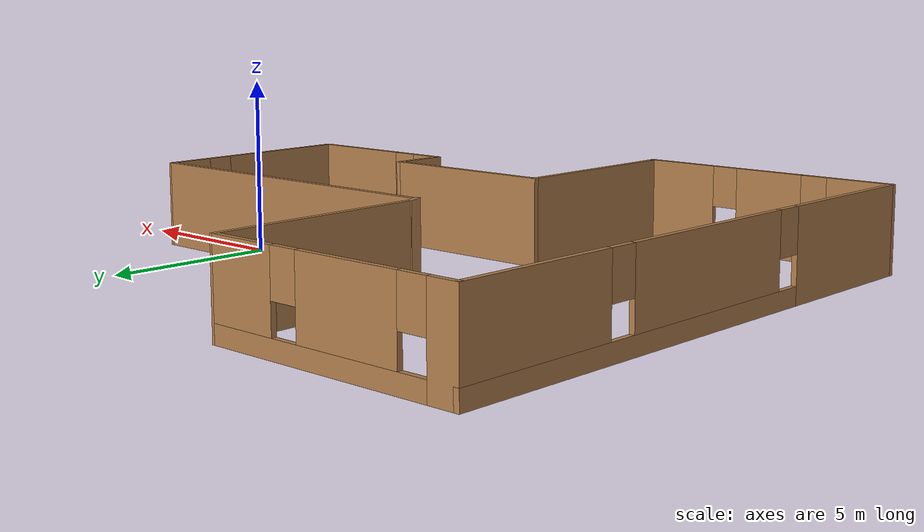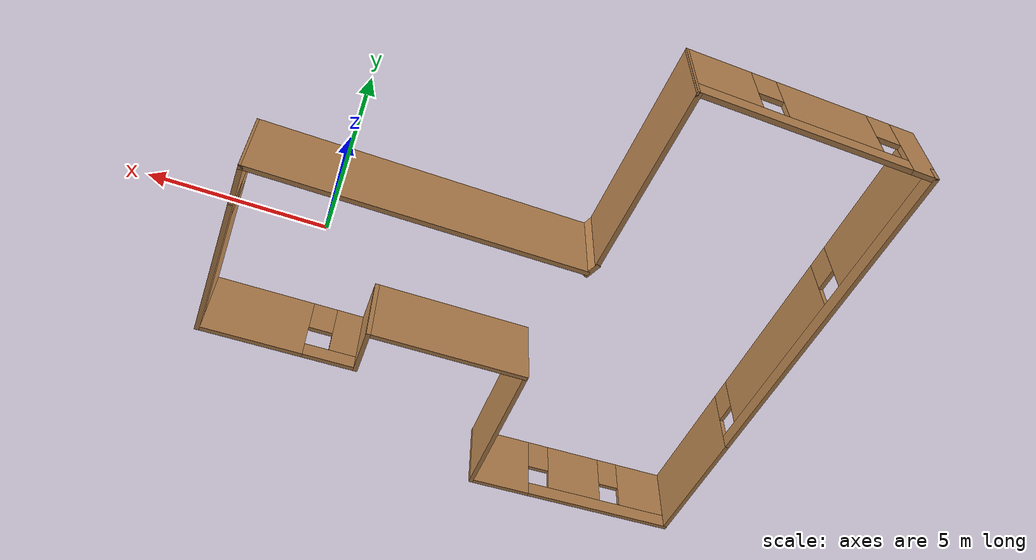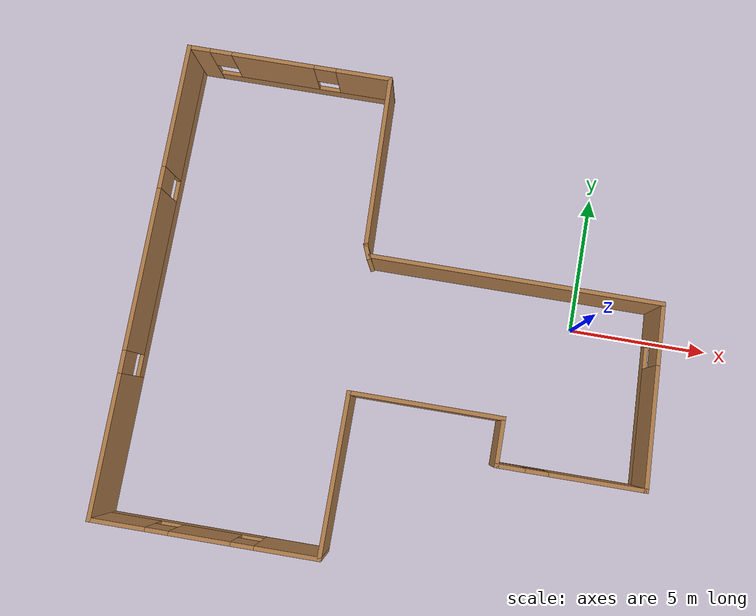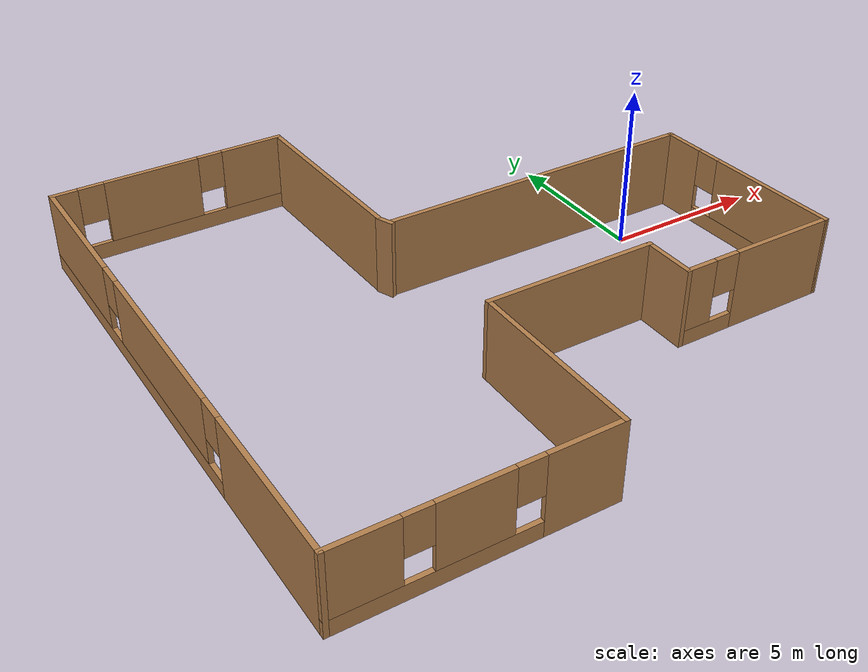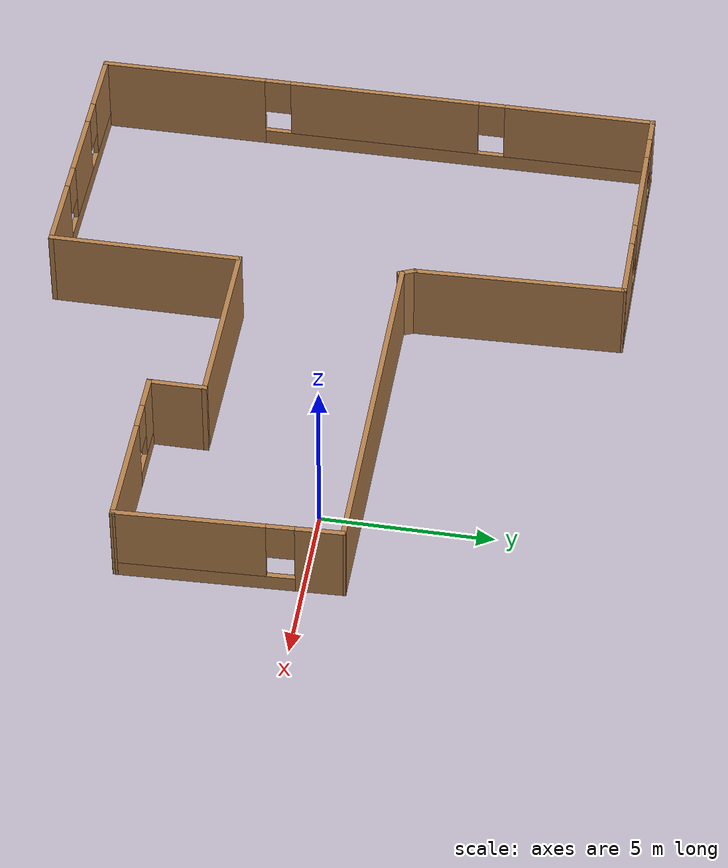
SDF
<?xml version='1.0'?>
<sdf version='1.6'>
  <model name='project2_building'>
    <pose frame=''>-6.21934 -0.832787 0 0 -0 0</pose>
    <link name='Wall_1'>
      <collision name='Wall_1_Collision'>
        <geometry>
          <box>
            <size>10.5 0.15 2.5</size>
          </box>
        </geometry>
        <pose frame=''>0 0 1.25 0 -0 0</pose>
      </collision>
      <visual name='Wall_1_Visual'>
        <pose frame=''>0 0 1.25 0 -0 0</pose>
        <geometry>
          <box>
            <size>10.5 0.15 2.5</size>
          </box>
        </geometry>
        <material>
          <script>
            <uri>file://media/materials/scripts/gazebo.material</uri>
            <name>Gazebo/Wood</name>
          </script>
          <ambient>1 1 1 1</ambient>
        </material>
        <meta>
          <layer>0</layer>
        </meta>
      </visual>
      <pose frame=''>3.72356 1.96596 0 0 -0 0</pose>
    </link>
    <link name='Wall_10'>
      <collision name='Wall_10_Collision'>
        <geometry>
          <box>
            <size>6.21461 0.15 2.5</size>
          </box>
        </geometry>
        <pose frame=''>0 0 1.25 0 -0 0</pose>
      </collision>
      <visual name='Wall_10_Visual'>
        <pose frame=''>0 0 1.25 0 -0 0</pose>
        <geometry>
          <box>
            <size>6.21461 0.15 2.5</size>
          </box>
        </geometry>
        <material>
          <script>
            <uri>file://media/materials/scripts/gazebo.material</uri>
            <name>Gazebo/Wood</name>
          </script>
          <ambient>1 1 1 1</ambient>
        </material>
        <meta>
          <layer>0</layer>
        </meta>
      </visual>
      <pose frame=''>-1.70914 5.39297 0 0 0 -1.54035</pose>
    </link>
    <link name='Wall_11'>
      <collision name='Wall_11_Collision'>
        <geometry>
          <box>
            <size>0.579263 0.15 2.5</size>
          </box>
        </geometry>
        <pose frame=''>0 0 1.25 0 -0 0</pose>
      </collision>
      <visual name='Wall_11_Visual'>
        <pose frame=''>0 0 1.25 0 -0 0</pose>
        <geometry>
          <box>
            <size>0.579263 0.15 2.5</size>
          </box>
        </geometry>
        <material>
          <script>
            <uri>file://media/materials/scripts/gazebo.material</uri>
            <name>Gazebo/Wood</name>
          </script>
          <ambient>1 1 1 1</ambient>
        </material>
        <meta>
          <layer>0</layer>
        </meta>
      </visual>
      <pose frame=''>-1.53415 2.10249 0 0 0 -1.17521</pose>
    </link>
    <link name='Wall_2'>
      <pose frame=''>9.02356 -1.23008 0 0 0 -1.53171</pose>
      <visual name='Wall_2_Visual_0'>
        <pose frame=''>-2.56284 0 1.25 0 -0 0</pose>
        <geometry>
          <box>
            <size>1.42129 0.15 2.5</size>
          </box>
        </geometry>
        <material>
          <script>
            <uri>file://media/materials/scripts/gazebo.material</uri>
            <name>Gazebo/Wood</name>
          </script>
          <ambient>1 1 1 1</ambient>
        </material>
        <meta>
          <layer>0</layer>
        </meta>
      </visual>
      <collision name='Wall_2_Collision_0'>
        <geometry>
          <box>
            <size>1.42129 0.15 2.5</size>
          </box>
        </geometry>
        <pose frame=''>-2.56284 0 1.25 0 -0 0</pose>
      </collision>
      <visual name='Wall_2_Visual_1'>
        <pose frame=''>0.710646 0 0.25 0 -0 0</pose>
        <geometry>
          <box>
            <size>5.12568 0.15 0.5</size>
          </box>
        </geometry>
        <material>
          <script>
            <uri>file://media/materials/scripts/gazebo.material</uri>
            <name>Gazebo/Wood</name>
          </script>
          <ambient>1 1 1 1</ambient>
        </material>
        <meta>
          <layer>0</layer>
        </meta>
      </visual>
      <collision name='Wall_2_Collision_1'>
        <geometry>
          <box>
            <size>5.12568 0.15 0.5</size>
          </box>
        </geometry>
        <pose frame=''>0.710646 0 0.25 0 -0 0</pose>
      </collision>
      <visual name='Wall_2_Visual_2'>
        <pose frame=''>1.11065 0 1.5 0 -0 0</pose>
        <geometry>
          <box>
            <size>4.32568 0.15 2</size>
          </box>
        </geometry>
        <material>
          <script>
            <uri>file://media/materials/scripts/gazebo.material</uri>
            <name>Gazebo/Wood</name>
          </script>
          <ambient>1 1 1 1</ambient>
        </material>
        <meta>
          <layer>0</layer>
        </meta>
      </visual>
      <collision name='Wall_2_Collision_2'>
        <geometry>
          <box>
            <size>4.32568 0.15 2</size>
          </box>
        </geometry>
        <pose frame=''>1.11065 0 1.5 0 -0 0</pose>
      </collision>
      <visual name='Wall_2_Visual_3'>
        <pose frame=''>-1.45219 0 1.9 0 -0 0</pose>
        <geometry>
          <box>
            <size>0.8 0.15 1.2</size>
          </box>
        </geometry>
        <material>
          <script>
            <uri>file://media/materials/scripts/gazebo.material</uri>
            <name>Gazebo/Wood</name>
          </script>
          <ambient>1 1 1 1</ambient>
        </material>
        <meta>
          <layer>0</layer>
        </meta>
      </visual>
      <collision name='Wall_2_Collision_3'>
        <geometry>
          <box>
            <size>0.8 0.15 1.2</size>
          </box>
        </geometry>
        <pose frame=''>-1.45219 0 1.9 0 -0 0</pose>
      </collision>
    </link>
    <link name='Wall_3'>
      <pose frame=''>6.59856 -4.42612 0 0 -0 3.14159</pose>
      <visual name='Wall_3_Visual_0'>
        <pose frame=''>-0.924717 0 1.25 0 -0 0</pose>
        <geometry>
          <box>
            <size>3.40057 0.15 2.5</size>
          </box>
        </geometry>
        <material>
          <script>
            <uri>file://media/materials/scripts/gazebo.material</uri>
            <name>Gazebo/Wood</name>
          </script>
          <ambient>1 1 1 1</ambient>
        </material>
        <meta>
          <layer>0</layer>
        </meta>
      </visual>
      <collision name='Wall_3_Collision_0'>
        <geometry>
          <box>
            <size>3.40057 0.15 2.5</size>
          </box>
        </geometry>
        <pose frame=''>-0.924717 0 1.25 0 -0 0</pose>
      </collision>
      <visual name='Wall_3_Visual_1'>
        <pose frame=''>1.70028 0 0.25 0 -0 0</pose>
        <geometry>
          <box>
            <size>1.84943 0.15 0.5</size>
          </box>
        </geometry>
        <material>
          <script>
            <uri>file://media/materials/scripts/gazebo.material</uri>
            <name>Gazebo/Wood</name>
          </script>
          <ambient>1 1 1 1</ambient>
        </material>
        <meta>
          <layer>0</layer>
        </meta>
      </visual>
      <collision name='Wall_3_Collision_1'>
        <geometry>
          <box>
            <size>1.84943 0.15 0.5</size>
          </box>
        </geometry>
        <pose frame=''>1.70028 0 0.25 0 -0 0</pose>
      </collision>
      <visual name='Wall_3_Visual_2'>
        <pose frame=''>2.10028 0 1.5 0 -0 0</pose>
        <geometry>
          <box>
            <size>1.04943 0.15 2</size>
          </box>
        </geometry>
        <material>
          <script>
            <uri>file://media/materials/scripts/gazebo.material</uri>
            <name>Gazebo/Wood</name>
          </script>
          <ambient>1 1 1 1</ambient>
        </material>
        <meta>
          <layer>0</layer>
        </meta>
      </visual>
      <collision name='Wall_3_Collision_2'>
        <geometry>
          <box>
            <size>1.04943 0.15 2</size>
          </box>
        </geometry>
        <pose frame=''>2.10028 0 1.5 0 -0 0</pose>
      </collision>
      <visual name='Wall_3_Visual_3'>
        <pose frame=''>1.17557 0 1.9 0 -0 0</pose>
        <geometry>
          <box>
            <size>0.8 0.15 1.2</size>
          </box>
        </geometry>
        <material>
          <script>
            <uri>file://media/materials/scripts/gazebo.material</uri>
            <name>Gazebo/Wood</name>
          </script>
          <ambient>1 1 1 1</ambient>
        </material>
        <meta>
          <layer>0</layer>
        </meta>
      </visual>
      <collision name='Wall_3_Collision_3'>
        <geometry>
          <box>
            <size>0.8 0.15 1.2</size>
          </box>
        </geometry>
        <pose frame=''>1.17557 0 1.9 0 -0 0</pose>
      </collision>
    </link>
    <link name='Wall_4'>
      <collision name='Wall_4_Collision'>
        <geometry>
          <box>
            <size>1.75 0.15 2.5</size>
          </box>
        </geometry>
        <pose frame=''>0 0 1.25 0 -0 0</pose>
      </collision>
      <visual name='Wall_4_Visual'>
        <pose frame=''>0 0 1.25 0 -0 0</pose>
        <geometry>
          <box>
            <size>1.75 0.15 2.5</size>
          </box>
        </geometry>
        <material>
          <script>
            <uri>file://media/materials/scripts/gazebo.material</uri>
            <name>Gazebo/Wood</name>
          </script>
          <ambient>1 1 1 1</ambient>
        </material>
        <meta>
          <layer>0</layer>
        </meta>
      </visual>
      <pose frame=''>4.04856 -3.62612 0 0 -0 1.5708</pose>
    </link>
    <link name='Wall_5'>
      <collision name='Wall_5_Collision'>
        <geometry>
          <box>
            <size>5.5 0.15 2.5</size>
          </box>
        </geometry>
        <pose frame=''>0 0 1.25 0 -0 0</pose>
      </collision>
      <visual name='Wall_5_Visual'>
        <pose frame=''>0 0 1.25 0 -0 0</pose>
        <geometry>
          <box>
            <size>5.5 0.15 2.5</size>
          </box>
        </geometry>
        <material>
          <script>
            <uri>file://media/materials/scripts/gazebo.material</uri>
            <name>Gazebo/Wood</name>
          </script>
          <ambient>1 1 1 1</ambient>
        </material>
        <meta>
          <layer>0</layer>
        </meta>
      </visual>
      <pose frame=''>1.37356 -2.82612 0 0 -0 3.14159</pose>
    </link>
    <link name='Wall_6'>
      <collision name='Wall_6_Collision'>
        <geometry>
          <box>
            <size>5.75 0.15 2.5</size>
          </box>
        </geometry>
        <pose frame=''>0 0 1.25 0 -0 0</pose>
      </collision>
      <visual name='Wall_6_Visual'>
        <pose frame=''>0 0 1.25 0 -0 0</pose>
        <geometry>
          <box>
            <size>5.75 0.15 2.5</size>
          </box>
        </geometry>
        <material>
          <script>
            <uri>file://media/materials/scripts/gazebo.material</uri>
            <name>Gazebo/Wood</name>
          </script>
          <ambient>1 1 1 1</ambient>
        </material>
        <meta>
          <layer>0</layer>
        </meta>
      </visual>
      <pose frame=''>-1.30144 -5.62612 0 0 0 -1.5708</pose>
    </link>
    <link name='Wall_7'>
      <pose frame=''>-5.22644 -8.42612 0 0 -0 3.14159</pose>
      <visual name='Wall_7_Visual_0'>
        <pose frame=''>-2.8521 0 1.25 0 -0 0</pose>
        <geometry>
          <box>
            <size>2.29581 0.15 2.5</size>
          </box>
        </geometry>
        <material>
          <script>
            <uri>file://media/materials/scripts/gazebo.material</uri>
            <name>Gazebo/Wood</name>
          </script>
          <ambient>1 1 1 1</ambient>
        </material>
        <meta>
          <layer>0</layer>
        </meta>
      </visual>
      <collision name='Wall_7_Collision_0'>
        <geometry>
          <box>
            <size>2.29581 0.15 2.5</size>
          </box>
        </geometry>
        <pose frame=''>-2.8521 0 1.25 0 -0 0</pose>
      </collision>
      <visual name='Wall_7_Visual_1'>
        <pose frame=''>1.1479 0 0.25 0 -0 0</pose>
        <geometry>
          <box>
            <size>5.7042 0.15 0.5</size>
          </box>
        </geometry>
        <material>
          <script>
            <uri>file://media/materials/scripts/gazebo.material</uri>
            <name>Gazebo/Wood</name>
          </script>
          <ambient>1 1 1 1</ambient>
        </material>
        <meta>
          <layer>0</layer>
        </meta>
      </visual>
      <collision name='Wall_7_Collision_1'>
        <geometry>
          <box>
            <size>5.7042 0.15 0.5</size>
          </box>
        </geometry>
        <pose frame=''>1.1479 0 0.25 0 -0 0</pose>
      </collision>
      <visual name='Wall_7_Visual_2'>
        <pose frame=''>0.152205 0 1.5 0 -0 0</pose>
        <geometry>
          <box>
            <size>2.1128 0.15 2</size>
          </box>
        </geometry>
        <material>
          <script>
            <uri>file://media/materials/scripts/gazebo.material</uri>
            <name>Gazebo/Wood</name>
          </script>
          <ambient>1 1 1 1</ambient>
        </material>
        <meta>
          <layer>0</layer>
        </meta>
      </visual>
      <collision name='Wall_7_Collision_2'>
        <geometry>
          <box>
            <size>2.1128 0.15 2</size>
          </box>
        </geometry>
        <pose frame=''>0.152205 0 1.5 0 -0 0</pose>
      </collision>
      <visual name='Wall_7_Visual_3'>
        <pose frame=''>3.0043 0 1.5 0 -0 0</pose>
        <geometry>
          <box>
            <size>1.99139 0.15 2</size>
          </box>
        </geometry>
        <material>
          <script>
            <uri>file://media/materials/scripts/gazebo.material</uri>
            <name>Gazebo/Wood</name>
          </script>
          <ambient>1 1 1 1</ambient>
        </material>
        <meta>
          <layer>0</layer>
        </meta>
      </visual>
      <collision name='Wall_7_Collision_3'>
        <geometry>
          <box>
            <size>1.99139 0.15 2</size>
          </box>
        </geometry>
        <pose frame=''>3.0043 0 1.5 0 -0 0</pose>
      </collision>
      <visual name='Wall_7_Visual_4'>
        <pose frame=''>-1.30419 0 1.9 0 -0 0</pose>
        <geometry>
          <box>
            <size>0.8 0.15 1.2</size>
          </box>
        </geometry>
        <material>
          <script>
            <uri>file://media/materials/scripts/gazebo.material</uri>
            <name>Gazebo/Wood</name>
          </script>
          <ambient>1 1 1 1</ambient>
        </material>
        <meta>
          <layer>0</layer>
        </meta>
      </visual>
      <collision name='Wall_7_Collision_4'>
        <geometry>
          <box>
            <size>0.8 0.15 1.2</size>
          </box>
        </geometry>
        <pose frame=''>-1.30419 0 1.9 0 -0 0</pose>
      </collision>
      <visual name='Wall_7_Visual_5'>
        <pose frame=''>1.60861 0 1.9 0 -0 0</pose>
        <geometry>
          <box>
            <size>0.8 0.15 1.2</size>
          </box>
        </geometry>
        <material>
          <script>
            <uri>file://media/materials/scripts/gazebo.material</uri>
            <name>Gazebo/Wood</name>
          </script>
          <ambient>1 1 1 1</ambient>
        </material>
        <meta>
          <layer>0</layer>
        </meta>
      </visual>
      <collision name='Wall_7_Collision_5'>
        <geometry>
          <box>
            <size>0.8 0.15 1.2</size>
          </box>
        </geometry>
        <pose frame=''>1.60861 0 1.9 0 -0 0</pose>
      </collision>
    </link>
    <link name='Wall_8'>
      <pose frame=''>-9.15144 -0.001123 0 0 -0 1.5708</pose>
      <visual name='Wall_8_Visual_0'>
        <pose frame=''>-5.98183 0 1.25 0 -0 0</pose>
        <geometry>
          <box>
            <size>5.03634 0.15 2.5</size>
          </box>
        </geometry>
        <material>
          <script>
            <uri>file://media/materials/scripts/gazebo.material</uri>
            <name>Gazebo/Wood</name>
          </script>
          <ambient>1 1 1 1</ambient>
        </material>
        <meta>
          <layer>0</layer>
        </meta>
      </visual>
      <collision name='Wall_8_Collision_0'>
        <geometry>
          <box>
            <size>5.03634 0.15 2.5</size>
          </box>
        </geometry>
        <pose frame=''>-5.98183 0 1.25 0 -0 0</pose>
      </collision>
      <visual name='Wall_8_Visual_1'>
        <pose frame=''>2.51817 0 0.25 0 -0 0</pose>
        <geometry>
          <box>
            <size>11.9637 0.15 0.5</size>
          </box>
        </geometry>
        <material>
          <script>
            <uri>file://media/materials/scripts/gazebo.material</uri>
            <name>Gazebo/Wood</name>
          </script>
          <ambient>1 1 1 1</ambient>
        </material>
        <meta>
          <layer>0</layer>
        </meta>
      </visual>
      <collision name='Wall_8_Collision_1'>
        <geometry>
          <box>
            <size>11.9637 0.15 0.5</size>
          </box>
        </geometry>
        <pose frame=''>2.51817 0 0.25 0 -0 0</pose>
      </collision>
      <visual name='Wall_8_Visual_2'>
        <pose frame=''>0.233471 0 1.5 0 -0 0</pose>
        <geometry>
          <box>
            <size>5.79426 0.15 2</size>
          </box>
        </geometry>
        <material>
          <script>
            <uri>file://media/materials/scripts/gazebo.material</uri>
            <name>Gazebo/Wood</name>
          </script>
          <ambient>1 1 1 1</ambient>
        </material>
        <meta>
          <layer>0</layer>
        </meta>
      </visual>
      <collision name='Wall_8_Collision_2'>
        <geometry>
          <box>
            <size>5.79426 0.15 2</size>
          </box>
        </geometry>
        <pose frame=''>0.233471 0 1.5 0 -0 0</pose>
      </collision>
      <visual name='Wall_8_Visual_3'>
        <pose frame=''>6.2153 0 1.5 0 -0 0</pose>
        <geometry>
          <box>
            <size>4.5694 0.15 2</size>
          </box>
        </geometry>
        <material>
          <script>
            <uri>file://media/materials/scripts/gazebo.material</uri>
            <name>Gazebo/Wood</name>
          </script>
          <ambient>1 1 1 1</ambient>
        </material>
        <meta>
          <layer>0</layer>
        </meta>
      </visual>
      <collision name='Wall_8_Collision_3'>
        <geometry>
          <box>
            <size>4.5694 0.15 2</size>
          </box>
        </geometry>
        <pose frame=''>6.2153 0 1.5 0 -0 0</pose>
      </collision>
      <visual name='Wall_8_Visual_4'>
        <pose frame=''>-3.06366 0 1.9 0 -0 0</pose>
        <geometry>
          <box>
            <size>0.8 0.15 1.2</size>
          </box>
        </geometry>
        <material>
          <script>
            <uri>file://media/materials/scripts/gazebo.material</uri>
            <name>Gazebo/Wood</name>
          </script>
          <ambient>1 1 1 1</ambient>
        </material>
        <meta>
          <layer>0</layer>
        </meta>
      </visual>
      <collision name='Wall_8_Collision_4'>
        <geometry>
          <box>
            <size>0.8 0.15 1.2</size>
          </box>
        </geometry>
        <pose frame=''>-3.06366 0 1.9 0 -0 0</pose>
      </collision>
      <visual name='Wall_8_Visual_5'>
        <pose frame=''>3.5306 0 1.9 0 -0 0</pose>
        <geometry>
          <box>
            <size>0.8 0.15 1.2</size>
          </box>
        </geometry>
        <material>
          <script>
            <uri>file://media/materials/scripts/gazebo.material</uri>
            <name>Gazebo/Wood</name>
          </script>
          <ambient>1 1 1 1</ambient>
        </material>
        <meta>
          <layer>0</layer>
        </meta>
      </visual>
      <collision name='Wall_8_Collision_5'>
        <geometry>
          <box>
            <size>0.8 0.15 1.2</size>
          </box>
        </geometry>
        <pose frame=''>3.5306 0 1.9 0 -0 0</pose>
      </collision>
    </link>
    <link name='Wall_9'>
      <pose frame=''>-5.47644 8.42388 0 0 -0 0</pose>
      <visual name='Wall_9_Visual_0'>
        <pose frame=''>-3.32651 0 1.25 0 -0 0</pose>
        <geometry>
          <box>
            <size>0.846977 0.15 2.5</size>
          </box>
        </geometry>
        <material>
          <script>
            <uri>file://media/materials/scripts/gazebo.material</uri>
            <name>Gazebo/Wood</name>
          </script>
          <ambient>1 1 1 1</ambient>
        </material>
        <meta>
          <layer>0</layer>
        </meta>
      </visual>
      <collision name='Wall_9_Collision_0'>
        <geometry>
          <box>
            <size>0.846977 0.15 2.5</size>
          </box>
        </geometry>
        <pose frame=''>-3.32651 0 1.25 0 -0 0</pose>
      </collision>
      <visual name='Wall_9_Visual_1'>
        <pose frame=''>0.423488 0 0.25 0 -0 0</pose>
        <geometry>
          <box>
            <size>6.65302 0.15 0.5</size>
          </box>
        </geometry>
        <material>
          <script>
            <uri>file://media/materials/scripts/gazebo.material</uri>
            <name>Gazebo/Wood</name>
          </script>
          <ambient>1 1 1 1</ambient>
        </material>
        <meta>
          <layer>0</layer>
        </meta>
      </visual>
      <collision name='Wall_9_Collision_1'>
        <geometry>
          <box>
            <size>6.65302 0.15 0.5</size>
          </box>
        </geometry>
        <pose frame=''>0.423488 0 0.25 0 -0 0</pose>
      </collision>
      <visual name='Wall_9_Visual_2'>
        <pose frame=''>-0.601611 0 1.5 0 -0 0</pose>
        <geometry>
          <box>
            <size>3.00282 0.15 2</size>
          </box>
        </geometry>
        <material>
          <script>
            <uri>file://media/materials/scripts/gazebo.material</uri>
            <name>Gazebo/Wood</name>
          </script>
          <ambient>1 1 1 1</ambient>
        </material>
        <meta>
          <layer>0</layer>
        </meta>
      </visual>
      <collision name='Wall_9_Collision_2'>
        <geometry>
          <box>
            <size>3.00282 0.15 2</size>
          </box>
        </geometry>
        <pose frame=''>-0.601611 0 1.5 0 -0 0</pose>
      </collision>
      <visual name='Wall_9_Visual_3'>
        <pose frame=''>2.7249 0 1.5 0 -0 0</pose>
        <geometry>
          <box>
            <size>2.0502 0.15 2</size>
          </box>
        </geometry>
        <material>
          <script>
            <uri>file://media/materials/scripts/gazebo.material</uri>
            <name>Gazebo/Wood</name>
          </script>
          <ambient>1 1 1 1</ambient>
        </material>
        <meta>
          <layer>0</layer>
        </meta>
      </visual>
      <collision name='Wall_9_Collision_3'>
        <geometry>
          <box>
            <size>2.0502 0.15 2</size>
          </box>
        </geometry>
        <pose frame=''>2.7249 0 1.5 0 -0 0</pose>
      </collision>
      <visual name='Wall_9_Visual_4'>
        <pose frame=''>-2.50302 0 1.9 0 -0 0</pose>
        <geometry>
          <box>
            <size>0.8 0.15 1.2</size>
          </box>
        </geometry>
        <material>
          <script>
            <uri>file://media/materials/scripts/gazebo.material</uri>
            <name>Gazebo/Wood</name>
          </script>
          <ambient>1 1 1 1</ambient>
        </material>
        <meta>
          <layer>0</layer>
        </meta>
      </visual>
      <collision name='Wall_9_Collision_4'>
        <geometry>
          <box>
            <size>0.8 0.15 1.2</size>
          </box>
        </geometry>
        <pose frame=''>-2.50302 0 1.9 0 -0 0</pose>
      </collision>
      <visual name='Wall_9_Visual_5'>
        <pose frame=''>1.2998 0 1.9 0 -0 0</pose>
        <geometry>
          <box>
            <size>0.8 0.15 1.2</size>
          </box>
        </geometry>
        <material>
          <script>
            <uri>file://media/materials/scripts/gazebo.material</uri>
            <name>Gazebo/Wood</name>
          </script>
          <ambient>1 1 1 1</ambient>
        </material>
        <meta>
          <layer>0</layer>
        </meta>
      </visual>
      <collision name='Wall_9_Collision_5'>
        <geometry>
          <box>
            <size>0.8 0.15 1.2</size>
          </box>
        </geometry>
        <pose frame=''>1.2998 0 1.9 0 -0 0</pose>
      </collision>
    </link>
    <static>1</static>
  </model>
</sdf>
